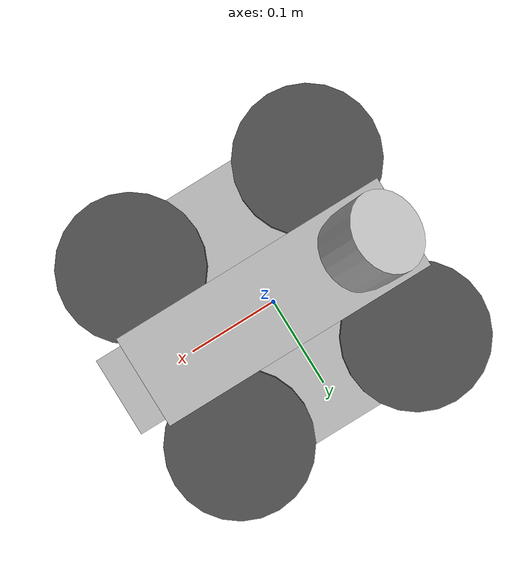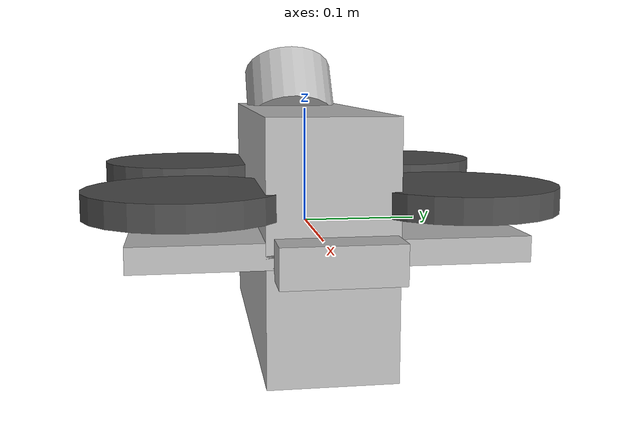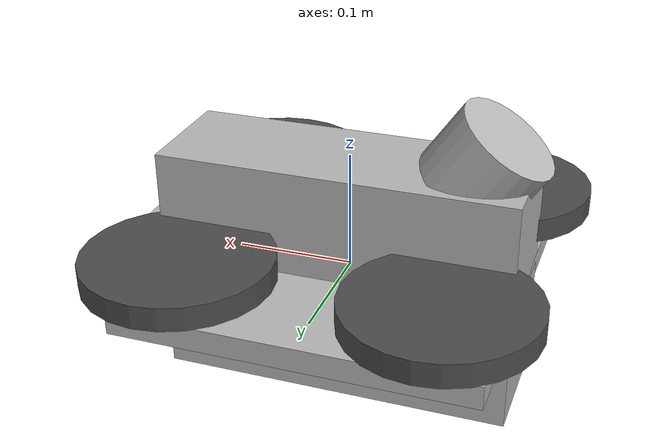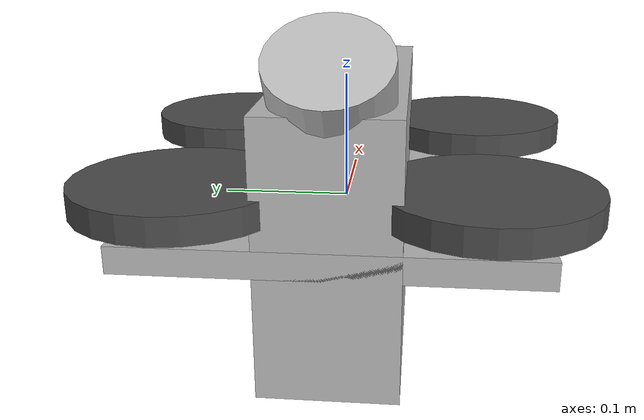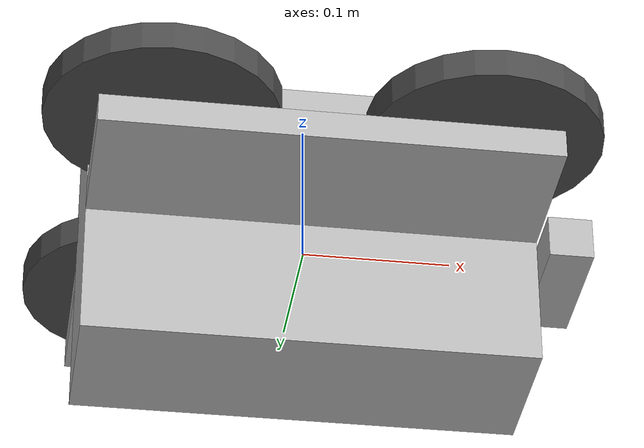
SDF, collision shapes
<?xml version="1.0" encoding="UTF-8"?>
<sdf version='1.9'>
  <model name='drainy'>
    <pose>0 0 0 0 0 0</pose>
    <self_collide>false</self_collide>
    <static>false</static>
    <link name="base_link">
      <inertial>
        <mass>2.0</mass>
        <inertia>
          <ixx>0.02166666666666667</ixx>
          <ixy>0</ixy>
          <ixz>0</ixz>
          <iyy>0.04000000000000001</iyy>
          <iyz>0</iyz>
          <izz>0.02166666666666667</izz>
        </inertia>
      </inertial>

      <gravity>true</gravity>
      <velocity_decay />

      <visual name="base_link_visual">
        <pose>-0.141 -0.046 0 0 0 0</pose>
        <geometry>
          <mesh>
            <scale>1 1 1</scale>
            <uri>model://drainy/meshes/ProyectoFC_Drainy.dae</uri>
          </mesh>
        </geometry>
      </visual>

      <collision name="base_link_collision_0">
        <pose>0 0 0 0 0 0</pose>
        <geometry>
          <box>
            <size>0.3 0.3 0.02</size>
          </box>
        </geometry>
        <surface>
          <contact>
            <ode>
              <min_depth>0.001</min_depth>
              <max_vel>0</max_vel>
            </ode>
          </contact>
          <friction>
            <ode />
          </friction>
        </surface>
      </collision>

      <collision name="base_link_collision_1">
        <pose>0 0 0 0 0 0</pose>
        <geometry>
          <box>
            <size>0.3 0.1 0.2</size>
          </box>
        </geometry>
        <surface>
          <contact>
            <ode>
              <min_depth>0.001</min_depth>
              <max_vel>0</max_vel>
            </ode>
          </contact>
          <friction>
            <ode />
          </friction>
        </surface>
      </collision>

      <sensor name="air_pressure_sensor" type="air_pressure">
        <gz_frame_id>base_link</gz_frame_id>
        <always_on>1</always_on>
        <update_rate>50</update_rate>
        <air_pressure>
          <!-- Noise modeled after BMP390 -->
          <pressure>
            <noise type="gaussian">
              <mean>0</mean>
              <stddev>3</stddev>
            </noise>
          </pressure>
        </air_pressure>
      </sensor>

      <sensor name="magnetometer_sensor" type="magnetometer">
        <gz_frame_id>base_link</gz_frame_id>
        <always_on>1</always_on>
        <update_rate>100</update_rate>
        <magnetometer>
          <!-- TODO: update to fix units and coordinate system when we move past Harmonic -->
          <!-- See https://github.com/gazebosim/gz-sim/pull/2460 -->
          <!-- 3mgauss RMS: NOTE: noise is in tesla but sensor reports data in gauss -->
          <!-- Noise modeled after IIS2MDC -->
          <x>
            <noise type="gaussian">
              <stddev>0.0001</stddev>
            </noise>
          </x>
          <y>
            <noise type="gaussian">
              <stddev>0.0001</stddev>
            </noise>
          </y>
          <z>
            <noise type="gaussian">
              <stddev>0.0001</stddev>
            </noise>
          </z>
        </magnetometer>
      </sensor>

      <sensor name="imu_sensor" type="imu">
        <gz_frame_id>base_link</gz_frame_id>
        <always_on>1</always_on>
        <update_rate>250</update_rate>
        <imu>
          <angular_velocity>
            <!-- Noise modeled after IIM42653 -->
            <!-- 0.05 deg/s converted to rad/s -->
            <x>
              <noise type="gaussian">
                <mean>0.0</mean>
                <stddev>0.0008726646</stddev>
              </noise>
            </x>
            <y>
              <noise type="gaussian">
                <mean>0.0</mean>
                <stddev>0.0008726646</stddev>
              </noise>
            </y>
            <z>
              <noise type="gaussian">
                <mean>0.0</mean>
                <stddev>0.0008726646</stddev>
              </noise>
            </z>
          </angular_velocity>
          <linear_acceleration>
            <!-- Noise modeled after IIM42653 -->
            <!-- X & Y axis: 0.65 mg-rms converted to m/ss -->
            <x>
              <noise type="gaussian">
                <mean>0.0</mean>
                <stddev>0.00637</stddev>
              </noise>
            </x>
            <y>
              <noise type="gaussian">
                <mean>0.0</mean>
                <stddev>0.00637</stddev>
              </noise>
            </y>
            <!-- Z axis: 0.70 mg-rms converted to m/ss-->
            <z>
              <noise type="gaussian">
                <mean>0.0</mean>
                <stddev>0.00686</stddev>
              </noise>
            </z>
          </linear_acceleration>
        </imu>
      </sensor>

      <sensor name="navsat_sensor" type="navsat">
        <gz_frame_id>base_link</gz_frame_id>
        <always_on>1</always_on>
        <update_rate>30</update_rate>
      </sensor>

    </link>

    <link name="rotor_0">
      <gravity>true</gravity>
      <self_collide>false</self_collide>
      <velocity_decay />
      <pose>0.106 -0.106 0.025 0 0 0</pose>
      <inertial>
        <mass>0.016076923076923075</mass>
        <inertia>
          <ixx>3.8464910483993325e-07</ixx>
          <iyy>2.6115851691700804e-05</iyy>
          <izz>2.649858234714004e-05</izz>
        </inertia>
      </inertial>
      <visual name="rotor_0_visual">
        <pose>-0.0765 0.0765 0 1.57 0 0</pose>
        <geometry>
          <mesh>
            <scale>1 1 1</scale>
            <uri>model://drainy/meshes/propv5_6x6x3.stl</uri>
          </mesh>
        </geometry>
        <material>
          <script>
            <name>Gazebo/DarkGrey</name>
            <uri>file://media/materials/scripts/gazebo.material</uri>
          </script>
        </material>
      </visual>
      <collision name="rotor_0_collision">
        <pose>0 0 0.01 0 0 0 </pose>
        <geometry>
          <cylinder>
            <radius>0.078</radius>
            <length>0.02</length>
          </cylinder>
        </geometry>
        <surface>
          <contact>
            <ode>
              <min_depth>0.001</min_depth>
              <max_vel>0</max_vel>
            </ode>
          </contact>
          <friction>
            <ode />
          </friction>
        </surface>
      </collision>
    </link>
    <joint name="rotor_0_joint" type="revolute">
      <parent>base_link</parent>
      <child>rotor_0</child>
      <axis>
        <xyz>0 0 1</xyz>
        <limit>
          <lower>-1e+16</lower>
          <upper>1e+16</upper>
        </limit>
        <dynamics>
          <spring_reference>0</spring_reference>
          <spring_stiffness>0</spring_stiffness>
        </dynamics>
      </axis>
    </joint>
    <link name="rotor_1">
      <gravity>true</gravity>
      <self_collide>false</self_collide>
      <velocity_decay />
      <pose>-0.106 0.106 0.025 0 0 0</pose>
      <inertial>
        <mass>0.016076923076923075</mass>
        <inertia>
          <ixx>3.8464910483993325e-07</ixx>
          <iyy>2.6115851691700804e-05</iyy>
          <izz>2.649858234714004e-05</izz>
        </inertia>
      </inertial>
      <visual name="rotor_1_visual">
        <pose>-0.0765 0.0765 0 1.57 0 0</pose>
        <geometry>
          <mesh>
            <scale>1 1 1</scale>
            <uri>model://drainy/meshes/propv5_6x6x3.stl</uri>
          </mesh>
        </geometry>
        <material>
          <script>
            <name>Gazebo/DarkGrey</name>
            <uri>file://media/materials/scripts/gazebo.material</uri>
          </script>
        </material>
      </visual>
      <collision name="rotor_1_collision">
        <pose>0 0 0.01 0 0 0 </pose>
        <geometry>
          <cylinder>
            <radius>0.078</radius>
            <length>0.02</length>
          </cylinder>
        </geometry>
        <surface>
          <contact>
            <ode>
              <min_depth>0.001</min_depth>
              <max_vel>0</max_vel>
            </ode>
          </contact>
          <friction>
            <ode />
          </friction>
        </surface>
      </collision>
    </link>
    <joint name="rotor_1_joint" type="revolute">
      <parent>base_link</parent>
      <child>rotor_1</child>
      <axis>
        <xyz>0 0 1</xyz>
        <limit>
          <lower>-1e+16</lower>
          <upper>1e+16</upper>
        </limit>
        <dynamics>
          <spring_reference>0</spring_reference>
          <spring_stiffness>0</spring_stiffness>
        </dynamics>
      </axis>
    </joint>
    <link name="rotor_2">
      <gravity>true</gravity>
      <self_collide>false</self_collide>
      <velocity_decay />
      <pose>0.106 0.106 0.025 0 0 0</pose>
      <inertial>
        <mass>0.016076923076923075</mass>
        <inertia>
          <ixx>3.8464910483993325e-07</ixx>
          <iyy>2.6115851691700804e-05</iyy>
          <izz>2.649858234714004e-05</izz>
        </inertia>
      </inertial>
      <visual name="rotor_2_visual">
        <pose>-0.0765 0.0765 0 1.57 0 0</pose>
        <geometry>
          <mesh>
            <scale>1 1 1</scale>
            <uri>model://drainy/meshes/propv5_6x6x3.stl</uri>
          </mesh>
        </geometry>
        <material>
          <script>
            <name>Gazebo/DarkGrey</name>
            <uri>file://media/materials/scripts/gazebo.material</uri>
          </script>
        </material>
      </visual>

      <collision name="rotor_2_collision">
        <pose>0 0 0.01 0 0 0 </pose>
        <geometry>
          <cylinder>
            <radius>0.078</radius>
            <length>0.02</length>
          </cylinder>
        </geometry>
        <surface>
          <contact>
            <ode>
              <min_depth>0.001</min_depth>
              <max_vel>0</max_vel>
            </ode>
          </contact>
          <friction>
            <ode />
          </friction>
        </surface>
      </collision>
    </link>
    <joint name="rotor_2_joint" type="revolute">
      <parent>base_link</parent>
      <child>rotor_2</child>
      <axis>
        <xyz>0 0 1</xyz>
        <limit>
          <lower>-1e+16</lower>
          <upper>1e+16</upper>
        </limit>
        <dynamics>
          <spring_reference>0</spring_reference>
          <spring_stiffness>0</spring_stiffness>
        </dynamics>
      </axis>
    </joint>
    <link name="rotor_3">
      <gravity>true</gravity>
      <self_collide>false</self_collide>
      <velocity_decay />
      <pose>-0.106 -0.106 0.025 0 0 0</pose>
      <inertial>
        <mass>0.016076923076923075</mass>
        <inertia>
          <ixx>3.8464910483993325e-07</ixx>
          <iyy>2.6115851691700804e-05</iyy>
          <izz>2.649858234714004e-05</izz>
        </inertia>
      </inertial>
      <visual name="rotor_3_visual">
        <pose>-0.0765 0.0765 0 1.57 0 0</pose>
        <geometry>
          <mesh>
            <scale>1 1 1</scale>
            <uri>model://drainy/meshes/propv5_6x6x3.stl</uri>
          </mesh>
        </geometry>
        <material>
          <script>
            <name>Gazebo/DarkGrey</name>
            <uri>file://media/materials/scripts/gazebo.material</uri>
          </script>
        </material>
      </visual>
      <collision name="rotor_3_collision">
        <pose>0 0 0.01 0 0 0 </pose>
        <geometry>
          <cylinder>
            <radius>0.078</radius>
            <length>0.02</length>
          </cylinder>
        </geometry>
        <surface>
          <contact>
            <ode>
              <min_depth>0.001</min_depth>
              <max_vel>0</max_vel>
            </ode>
          </contact>
          <friction>
            <ode />
          </friction>
        </surface>
      </collision>
    </link>
    <joint name="rotor_3_joint" type="revolute">
      <parent>base_link</parent>
      <child>rotor_3</child>
      <axis>
        <xyz>0 0 1</xyz>
        <limit>
          <lower>-1e+16</lower>
          <upper>1e+16</upper>
        </limit>
        <dynamics>
          <spring_reference>0</spring_reference>
          <spring_stiffness>0</spring_stiffness>
        </dynamics>
      </axis>
    </joint>

    <plugin filename="gz-sim-multicopter-motor-model-system"
      name="gz::sim::systems::MulticopterMotorModel">
      <jointName>rotor_0_joint</jointName>
      <linkName>rotor_0</linkName>
      <turningDirection>ccw</turningDirection>
      <timeConstantUp>0.0125</timeConstantUp>
      <timeConstantDown>0.025</timeConstantDown>
      <maxRotVelocity>30000.0</maxRotVelocity>
      <motorConstant>8.54858e-06</motorConstant>
      <momentConstant>0.016</momentConstant>
      <commandSubTopic>command/motor_speed</commandSubTopic>
      <motorNumber>0</motorNumber>
      <rotorDragCoefficient>8.06428e-05</rotorDragCoefficient>
      <rollingMomentCoefficient>1e-06</rollingMomentCoefficient>
      <rotorVelocitySlowdownSim>10</rotorVelocitySlowdownSim>
      <motorType>velocity</motorType>
    </plugin>
    <plugin filename="gz-sim-multicopter-motor-model-system"
      name="gz::sim::systems::MulticopterMotorModel">
      <jointName>rotor_1_joint</jointName>
      <linkName>rotor_1</linkName>
      <turningDirection>ccw</turningDirection>
      <timeConstantUp>0.0125</timeConstantUp>
      <timeConstantDown>0.025</timeConstantDown>
      <maxRotVelocity>30000.0</maxRotVelocity>
      <motorConstant>8.54858e-06</motorConstant>
      <momentConstant>0.016</momentConstant>
      <commandSubTopic>command/motor_speed</commandSubTopic>
      <motorNumber>1</motorNumber>
      <rotorDragCoefficient>8.06428e-05</rotorDragCoefficient>
      <rollingMomentCoefficient>1e-06</rollingMomentCoefficient>
      <rotorVelocitySlowdownSim>10</rotorVelocitySlowdownSim>
      <motorType>velocity</motorType>
    </plugin>
    <plugin filename="gz-sim-multicopter-motor-model-system"
      name="gz::sim::systems::MulticopterMotorModel">
      <jointName>rotor_2_joint</jointName>
      <linkName>rotor_2</linkName>
      <turningDirection>cw</turningDirection>
      <timeConstantUp>0.0125</timeConstantUp>
      <timeConstantDown>0.025</timeConstantDown>
      <maxRotVelocity>30000.0</maxRotVelocity>
      <motorConstant>8.54858e-06</motorConstant>
      <momentConstant>0.016</momentConstant>
      <commandSubTopic>command/motor_speed</commandSubTopic>
      <motorNumber>2</motorNumber>
      <rotorDragCoefficient>8.06428e-05</rotorDragCoefficient>
      <rollingMomentCoefficient>1e-06</rollingMomentCoefficient>
      <rotorVelocitySlowdownSim>10</rotorVelocitySlowdownSim>
      <motorType>velocity</motorType>
    </plugin>
    <plugin filename="gz-sim-multicopter-motor-model-system"
      name="gz::sim::systems::MulticopterMotorModel">
      <jointName>rotor_3_joint</jointName>
      <linkName>rotor_3</linkName>
      <turningDirection>cw</turningDirection>
      <timeConstantUp>0.0125</timeConstantUp>
      <timeConstantDown>0.025</timeConstantDown>
      <maxRotVelocity>30000.0</maxRotVelocity>
      <motorConstant>8.54858e-06</motorConstant>
      <momentConstant>0.016</momentConstant>
      <commandSubTopic>command/motor_speed</commandSubTopic>
      <motorNumber>3</motorNumber>
      <rotorDragCoefficient>8.06428e-05</rotorDragCoefficient>
      <rollingMomentCoefficient>1e-06</rollingMomentCoefficient>
      <rotorVelocitySlowdownSim>10</rotorVelocitySlowdownSim>
      <motorType>velocity</motorType>
    </plugin>
    <plugin filename="MotorFailurePlugin"
      name="gz::sim::systems::MotorFailureSystem">
    </plugin>
    <plugin
      filename="gz-sim-pose-publisher-system"
      name="gz::sim::systems::PosePublisher">
      <publish_link_pose>true</publish_link_pose>
      <publish_model_pose>false</publish_model_pose>
      <publish_sensor_pose>true</publish_sensor_pose>
      <publish_visual_pose>false</publish_visual_pose>
      <publish_nested_model_pose>true</publish_nested_model_pose>
      <use_pose_vector_msg>true</use_pose_vector_msg>
      <static_publisher>true</static_publisher>
    </plugin>
    <plugin
      filename="gz-sim-odometry-publisher-system"
      name="gz::sim::systems::OdometryPublisher">
      <dimensions>3</dimensions>
      <odom_frame>odom</odom_frame>
      <robot_base_frame>drainy_0</robot_base_frame>
    </plugin>
    <plugin filename="gz-sim-joint-state-publisher-system"
    name="gz::sim::systems::JointStatePublisher">
      <topic>joint_states</topic>
      <joint>rotor_0_joint</joint>
      <joint>rotor_1_joint</joint>
      <joint>rotor_2_joint</joint>
      <joint>rotor_3_joint</joint>
    </plugin>
    <include merge='true'>
      <uri>model://ouster_os1</uri>
      <pose relative_to="base_link">-0.095 0 0.085 0 -0.6108 0</pose>
    </include>
    <joint name="lidar_model_joint" type="fixed">
      <parent>base_link</parent>
      <child>drainy_0/lidar_sensor_link</child>
      <pose relative_to="base_link">0 0 0 0 0 0</pose>
    </joint>
    <joint name="lidar_joint" type="fixed">
      <parent>base_link</parent>
      <child>ouster_os1_link</child>
      <pose relative_to="base_link">0 0 0 0 0 0</pose>
    </joint>
    <link name="drainy_0/lidar_sensor_link">
      <inertial>
        <mass>0.001</mass>
        <inertia>
          <ixx>0.00001</ixx>
          <iyy>0.00001</iyy>
          <izz>0.00001</izz>
          <ixy>0.0</ixy>
          <ixz>0.0</ixz>
          <iyz>0.0</iyz>
        </inertia>
      </inertial>
      <sensor name='lidar_3d' type='gpu_lidar'>
        <topic>lidar_3d</topic>
        <update_rate>20</update_rate>
        <ray>
          <scan>
            <horizontal>
              <samples>1024</samples>
              <resolution>1</resolution>
              <min_angle>-3.141592</min_angle>
              <max_angle>3.141592</max_angle>
            </horizontal>
            <vertical>
              <samples>32</samples>
              <resolution>1</resolution>
              <min_angle>-0.37</min_angle>
              <max_angle>0.37</max_angle>
            </vertical>
          </scan>
          <range>
            <min>2.0</min>
            <max>200.0</max>
            <resolution>0.05</resolution>
          </range>
        </ray>
        <always_on>1</always_on>
        <visualize>true</visualize>
      </sensor>
    </link>
    <include merge='true'>
      <uri>model://realsense_d435</uri>
      <pose>0.16 0 0 0 0 0</pose>
    </include>
    <joint name="CameraJoint" type="fixed">
      <parent>base_link</parent>
      <child>camera_link</child>
    </joint>

  </model>
</sdf>

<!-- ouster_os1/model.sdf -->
<sdf version="1.6">
  <model name="ouster_os1">
    <link name="ouster_os1_link">
      <pose>0 0 0 0 0 0</pose>
      <inertial>
        <pose>0 0 0 0 0 0</pose>
        <mass>0.502</mass>
        <inertia>
          <ixx>0.0009080594249999999</ixx>
          <ixy>0</ixy>
          <ixz>0</ixz>
          <iyy>0.0009080594249999999</iyy>
          <iyz>0</iyz>
          <izz>0.0011049624</izz>
        </inertia>
      </inertial>
      <collision name="collision">
        <pose>0 0 0.029 0 0 0</pose>
        <geometry>
          <cylinder>
            <radius>0.0435</radius>
            <length>0.05835</length>
          </cylinder>
        </geometry>
      </collision>
      <visual name="visual">
        <pose>0 0 0 1.57 0 -1.57</pose>
        <geometry>
          <mesh>
            <uri>model://ouster_os1/meshes/ouster_os1.dae</uri>
          </mesh>
        </geometry>
      </visual>
    </link>
  </model>
</sdf>

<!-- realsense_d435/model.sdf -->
<sdf version='1.9'>
  <model name='realsense_d435'>
    <pose>0 0 0 0 0 0</pose>
    <self_collide>false</self_collide>
    <static>false</static>
    <link name="camera_link">
      <inertial>
        <pose>0 0 0 0 0 0</pose>
        <mass>0.061</mass>
        <inertia>
          <ixx>0.0000460804</ixx>
          <ixy>0</ixy>
          <ixz>0</ixz>
          <iyy>0.0000055421</iyy>
          <iyz>0</iyz>
          <izz>0.0000436519</izz>
        </inertia>
      </inertial>
      <visual name="realsense_d435/visual">
        <pose>0.023 0 0 1.57 0 1.57</pose>
        <geometry>
          <mesh>
            <scale>1 1 1</scale>
            <uri>model://realsense_d435/meshes/realsense_435.dae</uri>
          </mesh>
        </geometry>
      </visual>
      <collision name="realsense_d435/collision">
        <pose>0.015 0 0 0 0 0</pose>
        <geometry>
          <box>
            <size>0.03 0.09 0.03</size>
          </box>
        </geometry>
      </collision>
      <sensor name="camera_image" type="camera">
        <gz_frame_id>drainy_0/camera_link</gz_frame_id>
        <pose>0 -0.017 0 0 0 0</pose>
        <camera>
          <horizontal_fov>1.204</horizontal_fov>
          <image>
            <width>1920</width>
            <height>1080</height>
          </image>
          <clip>
            <near>0.1</near>
            <far>100</far>
          </clip>
        </camera>
        <always_on>1</always_on>
        <update_rate>30</update_rate>
        <visualize>true</visualize>
      </sensor>
      <sensor name="camera_depth" type="rgbd_camera">
        <gz_frame_id>drainy_0/camera_link</gz_frame_id>
        <pose>0 -0.004 0 0 0 0</pose>
        <camera>
          <horizontal_fov>1.4870</horizontal_fov>
          <vertical_fov>1.0123</vertical_fov>
          <image>
            <width>848</width>
            <height>480</height>
            <format>R8G8B8</format>
          </image>
          <clip>
            <near>0.3</near>
            <far>10</far>
          </clip>
        </camera>
        <always_on>1</always_on>
        <update_rate>30</update_rate>
        <visualize>true</visualize>
        <topic>depth_camera</topic>
      </sensor>
      <gravity>true</gravity>
      <velocity_decay />
    </link>
  </model>
</sdf>
